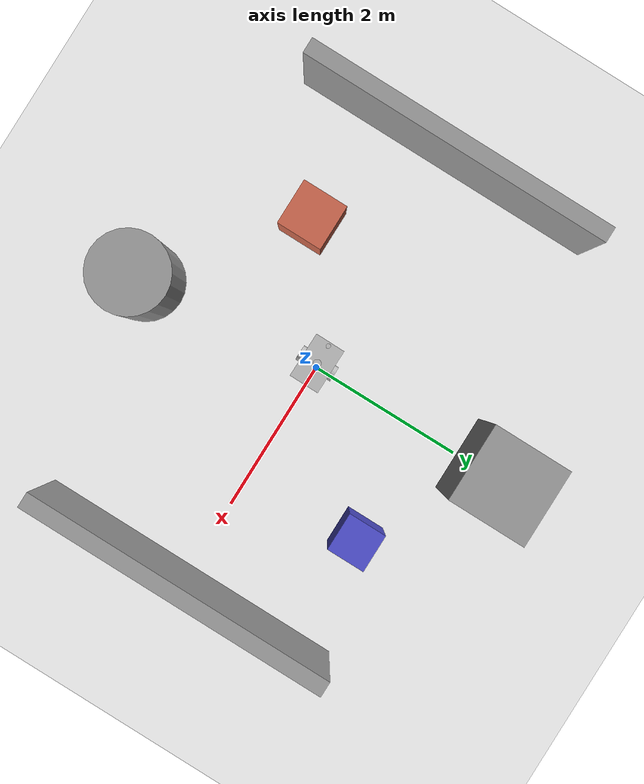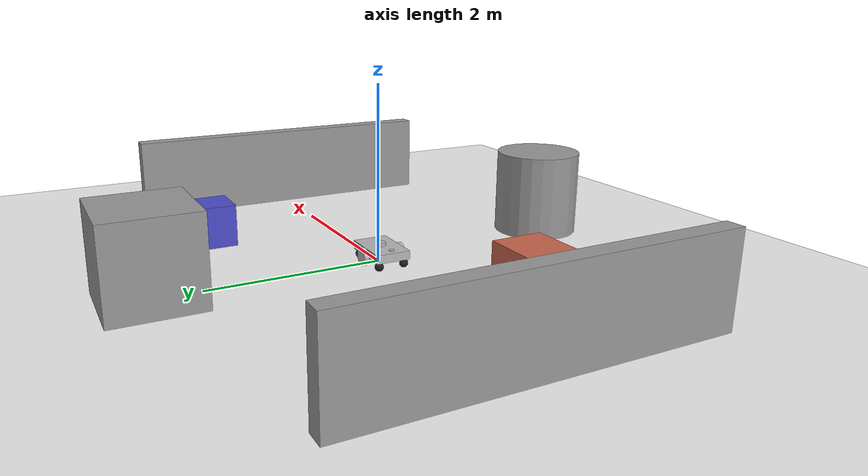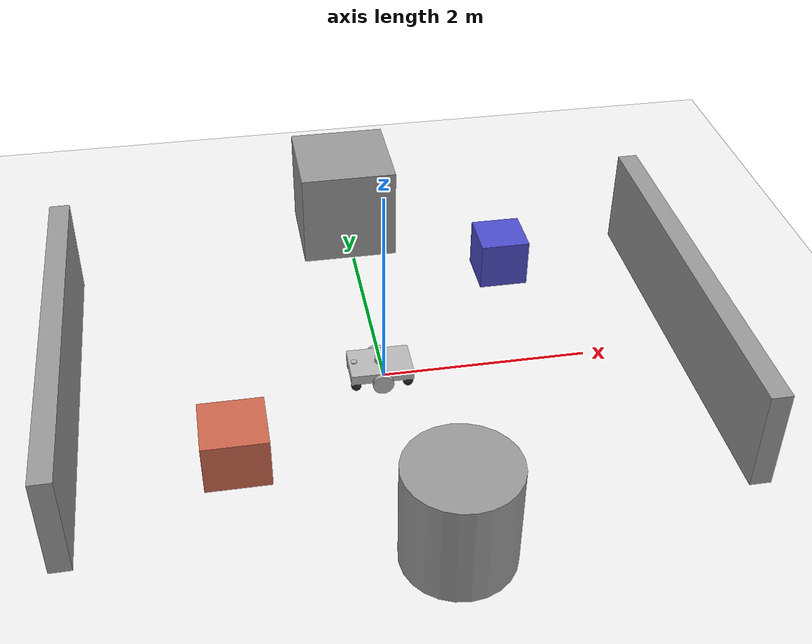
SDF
<sdf version="1.7">
 <world name="my_map">
  <physics type="ode">
   <real_time_update_rate>1000</real_time_update_rate>
   <max_step_size>0.001</max_step_size>
   <real_time_factor>1</real_time_factor>
  </physics>
  <light name="sun" type="directional">
   <pose>0 0 10 0 -0 0</pose>
   <diffuse>1 1 1 1</diffuse>
   <specular>0.1 0.1 0.1 1</specular>
   <direction>-0.5 0.5 -1</direction>
   <attenuation><range>10</range></attenuation>
   <spot><inner_angle>0</inner_angle><outer_angle>0</outer_angle><falloff>0</falloff></spot>
  </light>
  <model name="ground_plane">
   <static>1</static>
   <link name="link">
    <collision name="collision">
     <geometry><plane><normal>0 0 1</normal><size>30 30</size></plane></geometry>
    </collision>
    <visual name="visual">
     <geometry><plane><normal>0 0 1</normal><size>30 30</size></plane></geometry>
     <material><ambient>0.95 0.95 0.95 1</ambient><diffuse>0.95 0.95 0.95 1</diffuse></material>
    </visual>
   </link>
  </model>
  <model name="wall_1">
   <static>1</static>
   <pose>3 0 0.5 0 -0 0</pose>
   <link name="link">
    <collision name="collision"><geometry><box><size>0.2 4 1</size></box></geometry></collision>
    <visual name="visual">
     <geometry><box><size>0.2 4 1</size></box></geometry>
     <material><ambient>0.6 0.6 0.6 1</ambient><diffuse>0.6 0.6 0.6 1</diffuse></material>
    </visual>
   </link>
  </model>
  <model name="wall_2">
   <static>1</static>
   <pose>-3 0 0.5 0 -0 0</pose>
   <link name="link">
    <collision name="collision"><geometry><box><size>0.2 4 1</size></box></geometry></collision>
    <visual name="visual">
     <geometry><box><size>0.2 4 1</size></box></geometry>
     <material><ambient>0.6 0.6 0.6 1</ambient><diffuse>0.6 0.6 0.6 1</diffuse></material>
    </visual>
   </link>
  </model>
  <model name="box_1">
   <static>1</static>
   <pose>1.5 1.5 0.25 0 -0 0</pose>
   <link name="link">
    <collision name="collision"><geometry><box><size>0.5 0.5 0.5</size></box></geometry></collision>
    <visual name="visual">
     <geometry><box><size>0.5 0.5 0.5</size></box></geometry>
     <material><ambient>0.3 0.3 0.8 1</ambient><diffuse>0.3 0.3 0.8 1</diffuse></material>
    </visual>
   </link>
  </model>
  <model name="box_2">
   <static>1</static>
   <pose>-1.5 -1 0.25 0 -0 0</pose>
   <link name="link">
    <collision name="collision"><geometry><box><size>0.6 0.6 0.5</size></box></geometry></collision>
    <visual name="visual">
     <geometry><box><size>0.6 0.6 0.5</size></box></geometry>
     <material><ambient>0.8 0.4 0.3 1</ambient><diffuse>0.8 0.4 0.3 1</diffuse></material>
    </visual>
   </link>
  </model>
  <gravity>0 0 -9.8</gravity>
  <magnetic_field>6e-06 2.3e-05 -4.2e-05</magnetic_field>
  <atmosphere type="adiabatic"/>
  <scene><ambient>0.4 0.4 0.4 1</ambient><background>0.7 0.7 0.7 1</background><shadows>1</shadows></scene>
  <audio><device>default</device></audio>
  <spherical_coordinates>
   <surface_model>EARTH_WGS84</surface_model>
   <latitude_deg>0</latitude_deg>
   <longitude_deg>0</longitude_deg>
   <elevation>0</elevation>
   <heading_deg>0</heading_deg>
  </spherical_coordinates>
  <model name="my_robot">
   <link name="base_footprint">
    <inertial>
     <pose>0 -0 0.091667 0 -0 0</pose>
     <mass>12</mass>
     <inertia>
      <ixx>0.189167</ixx>
      <ixy>0</ixy>
      <ixz>0</ixz>
      <iyy>0.269167</iyy>
      <iyz>1.15648e-19</iyz>
      <izz>0.31</izz>
     </inertia>
    </inertial>
    <collision name="base_footprint_fixed_joint_lump__base_link_collision">
     <pose>0 0 0.15 0 -0 0</pose>
     <geometry><box><size>0.6 0.4 0.1</size></box></geometry>
    </collision>
    <collision name="base_footprint_fixed_joint_lump__front_left_caster_collision_1">
     <pose>0.25 0.15 0.05 0 -0 0</pose>
     <geometry><sphere><radius>0.05</radius></sphere></geometry>
     <surface><friction><ode><mu>0.001</mu><mu2>0.001</mu2></ode></friction></surface>
    </collision>
    <collision name="base_footprint_fixed_joint_lump__front_right_caster_collision_2">
     <pose>0.25 -0.15 0.05 0 -0 0</pose>
     <geometry><sphere><radius>0.05</radius></sphere></geometry>
     <surface><friction><ode><mu>0.001</mu><mu2>0.001</mu2></ode></friction></surface>
    </collision>
    <collision name="base_footprint_fixed_joint_lump__rear_left_caster_collision_3">
     <pose>-0.25 0.15 0.05 0 -0 0</pose>
     <geometry><sphere><radius>0.05</radius></sphere></geometry>
     <surface><friction><ode><mu>0.001</mu><mu2>0.001</mu2></ode></friction></surface>
    </collision>
    <collision name="base_footprint_fixed_joint_lump__rear_right_caster_collision_4">
     <pose>-0.25 -0.15 0.05 0 -0 0</pose>
     <geometry><sphere><radius>0.05</radius></sphere></geometry>
     <surface><friction><ode><mu>0.001</mu><mu2>0.001</mu2></ode></friction></surface>
    </collision>
    <visual name="base_footprint_fixed_joint_lump__base_link_visual">
     <pose>0 0 0.15 0 -0 0</pose>
     <geometry><box><size>0.6 0.4 0.1</size></box></geometry>
    </visual>
    <visual name="base_footprint_fixed_joint_lump__front_left_caster_visual_1">
     <pose>0.25 0.15 0.05 0 -0 0</pose>
     <geometry><sphere><radius>0.05</radius></sphere></geometry>
     <material>
      <script><name>Gazebo/Black</name><uri>file://media/materials/scripts/gazebo.material</uri></script>
     </material>
    </visual>
    <visual name="base_footprint_fixed_joint_lump__front_right_caster_visual_2">
     <pose>0.25 -0.15 0.05 0 -0 0</pose>
     <geometry><sphere><radius>0.05</radius></sphere></geometry>
     <material>
      <script><name>Gazebo/Black</name><uri>file://media/materials/scripts/gazebo.material</uri></script>
     </material>
    </visual>
    <visual name="base_footprint_fixed_joint_lump__gps_link_visual_3">
     <pose>-0.25 0 0.22 0 -0 0</pose>
     <geometry><cylinder><length>0.01</length><radius>0.03</radius></cylinder></geometry>
    </visual>
    <visual name="base_footprint_fixed_joint_lump__imu_link_visual_4">
     <pose>0 0 0.15 0 -0 0</pose>
     <geometry><box><size>0.02 0.02 0.01</size></box></geometry>
    </visual>
    <visual name="base_footprint_fixed_joint_lump__livox_frame_visual_5">
     <pose>0 0 0.22 0 -0 0</pose>
     <geometry><cylinder><length>0.04</length><radius>0.05</radius></cylinder></geometry>
    </visual>
    <visual name="base_footprint_fixed_joint_lump__rear_left_caster_visual_6">
     <pose>-0.25 0.15 0.05 0 -0 0</pose>
     <geometry><sphere><radius>0.05</radius></sphere></geometry>
     <material>
      <script><name>Gazebo/Black</name><uri>file://media/materials/scripts/gazebo.material</uri></script>
     </material>
    </visual>
    <visual name="base_footprint_fixed_joint_lump__rear_right_caster_visual_7">
     <pose>-0.25 -0.15 0.05 0 -0 0</pose>
     <geometry><sphere><radius>0.05</radius></sphere></geometry>
     <material>
      <script><name>Gazebo/Black</name><uri>file://media/materials/scripts/gazebo.material</uri></script>
     </material>
    </visual>
    <sensor name="lidar" type="ray">
     <always_on>1</always_on>
     <visualize>1</visualize>
     <update_rate>10</update_rate>
     <ray>
      <scan>
       <horizontal>
        <samples>360</samples>
        <resolution>1</resolution>
        <min_angle>-3.14</min_angle>
        <max_angle>3.14</max_angle>
       </horizontal>
       <vertical>
        <samples>16</samples>
        <resolution>1</resolution>
        <min_angle>-0.26</min_angle>
        <max_angle>0.26</max_angle>
       </vertical>
      </scan>
      <range><min>0.12</min><max>12</max><resolution>0.015</resolution></range>
     </ray>
     <plugin name="scan" filename="libgazebo_ros_ray_sensor.so">
      <ros><remapping>~/out:=/livox/points</remapping></ros>
      <output_type>sensor_msgs/PointCloud2</output_type>
      <frame_name>livox_frame</frame_name>
     </plugin>
     <pose>0 0 0.22 0 -0 0</pose>
    </sensor>
   </link>
   <joint name="left_wheel_joint" type="revolute">
    <pose relative_to="base_footprint">0 0.225 0.1 -1.5708 0 0</pose>
    <parent>base_footprint</parent>
    <child>left_wheel</child>
    <axis>
     <xyz>0 0 1</xyz>
     <limit><lower>-1e+16</lower><upper>1e+16</upper></limit>
     <dynamics><spring_reference>0</spring_reference><spring_stiffness>0</spring_stiffness></dynamics>
    </axis>
   </joint>
   <link name="left_wheel">
    <pose relative_to="left_wheel_joint">0 0 0 0 -0 0</pose>
    <inertial>
     <mass>2</mass>
     <inertia><ixx>0.1</ixx><ixy>0</ixy><ixz>0</ixz><iyy>0.1</iyy><iyz>0</iyz><izz>0.1</izz></inertia>
    </inertial>
    <collision name="left_wheel_collision">
     <geometry><cylinder><length>0.05</length><radius>0.1</radius></cylinder></geometry>
    </collision>
    <visual name="left_wheel_visual">
     <geometry><cylinder><length>0.05</length><radius>0.1</radius></cylinder></geometry>
    </visual>
   </link>
   <joint name="right_wheel_joint" type="revolute">
    <pose relative_to="base_footprint">0 -0.225 0.1 -1.5708 0 0</pose>
    <parent>base_footprint</parent>
    <child>right_wheel</child>
    <axis>
     <xyz>0 0 1</xyz>
     <limit><lower>-1e+16</lower><upper>1e+16</upper></limit>
     <dynamics><spring_reference>0</spring_reference><spring_stiffness>0</spring_stiffness></dynamics>
    </axis>
   </joint>
   <link name="right_wheel">
    <pose relative_to="right_wheel_joint">0 0 0 0 -0 0</pose>
    <inertial>
     <mass>2</mass>
     <inertia><ixx>0.1</ixx><ixy>0</ixy><ixz>0</ixz><iyy>0.1</iyy><iyz>0</iyz><izz>0.1</izz></inertia>
    </inertial>
    <collision name="right_wheel_collision">
     <geometry><cylinder><length>0.05</length><radius>0.1</radius></cylinder></geometry>
    </collision>
    <visual name="right_wheel_visual">
     <geometry><cylinder><length>0.05</length><radius>0.1</radius></cylinder></geometry>
    </visual>
   </link>
   <static>0</static>
   <plugin name="diff_drive_controller" filename="libgazebo_ros_diff_drive.so">
    <ros><namespace>/</namespace><remapping>cmd_vel:=cmd_vel</remapping><remapping>odom:=odom</remapping></ros>
    <update_rate>50</update_rate>
    <left_joint>left_wheel_joint</left_joint>
    <right_joint>right_wheel_joint</right_joint>
    <wheel_separation>0.45</wheel_separation>
    <wheel_diameter>0.2</wheel_diameter>
    <max_wheel_torque>20</max_wheel_torque>
    <max_wheel_acceleration>1.0</max_wheel_acceleration>
    <publish_odom>1</publish_odom>
    <publish_odom_tf>1</publish_odom_tf>
    <publish_wheel_tf>1</publish_wheel_tf>
    <odometry_frame>odom</odometry_frame>
    <robot_base_frame>base_footprint</robot_base_frame>
   </plugin>
   <pose>-0.044817 -0.019434 -0 0 0 -0.009136</pose>
  </model>
  <model name="unit_cylinder">
   <pose>0.220038 -2.35264 0.499993 -3e-06 -4e-06 -0</pose>
   <link name="link">
    <inertial>
     <mass>1</mass>
     <inertia><ixx>0.145833</ixx><ixy>0</ixy><ixz>0</ixz><iyy>0.145833</iyy><iyz>0</iyz><izz>0.125</izz></inertia>
    </inertial>
    <collision name="collision">
     <geometry><cylinder><radius>0.5</radius><length>1</length></cylinder></geometry>
    </collision>
    <visual name="visual">
     <geometry><cylinder><radius>0.5</radius><length>1</length></cylinder></geometry>
     <material>
      <script><name>Gazebo/Grey</name><uri>file://media/materials/scripts/gazebo.material</uri></script>
     </material>
    </visual>
   </link>
  </model>
  <model name="unit_box">
   <pose>-0.026656 2.53661 0.5 0 -0 0</pose>
   <link name="link">
    <inertial>
     <mass>1</mass>
     <inertia>
      <ixx>0.166667</ixx>
      <ixy>0</ixy>
      <ixz>0</ixz>
      <iyy>0.166667</iyy>
      <iyz>0</iyz>
      <izz>0.166667</izz>
     </inertia>
    </inertial>
    <collision name="collision"><geometry><box><size>1 1 1</size></box></geometry></collision>
    <visual name="visual">
     <geometry><box><size>1 1 1</size></box></geometry>
     <material>
      <script><name>Gazebo/Grey</name><uri>file://media/materials/scripts/gazebo.material</uri></script>
     </material>
    </visual>
   </link>
  </model>
 </world>
</sdf>
